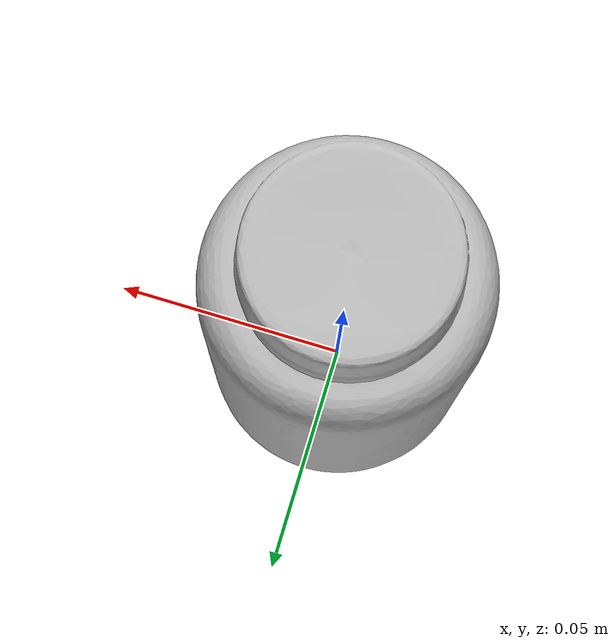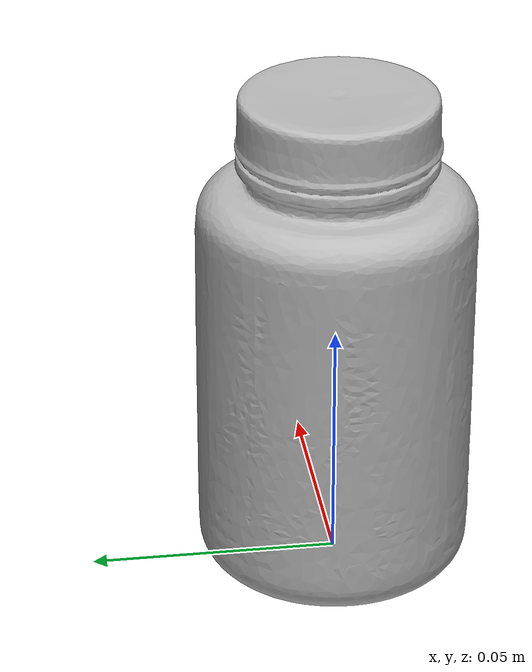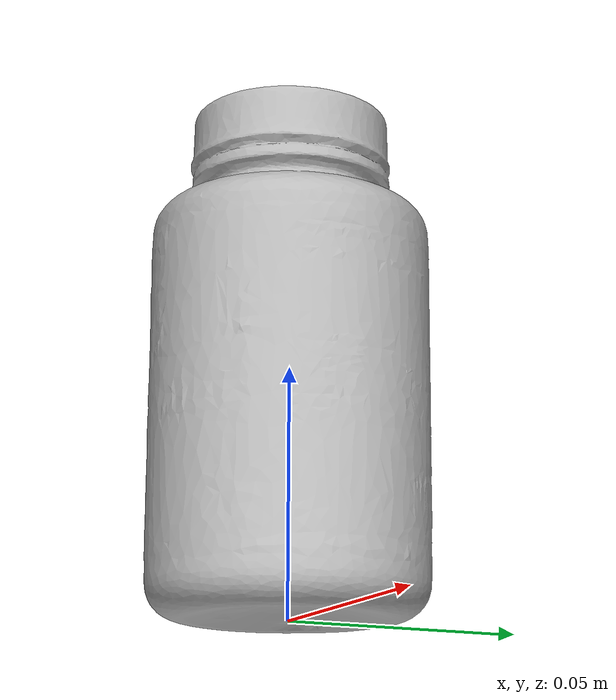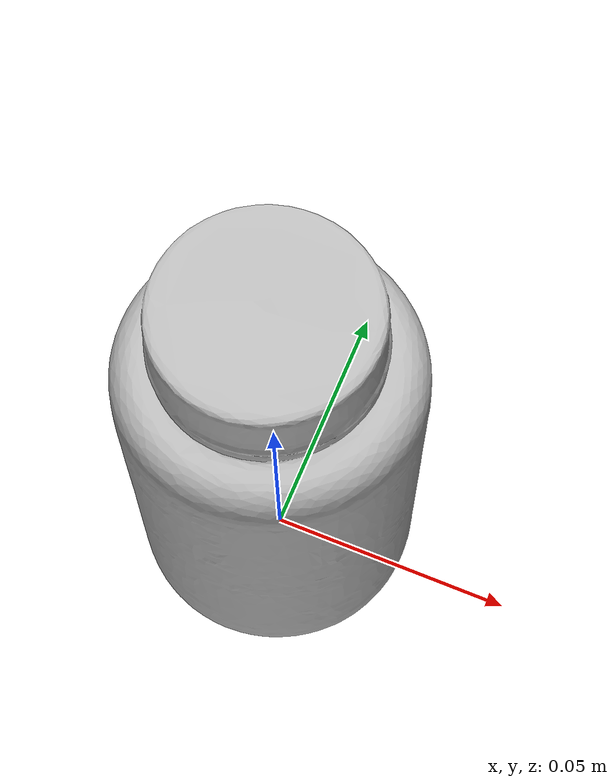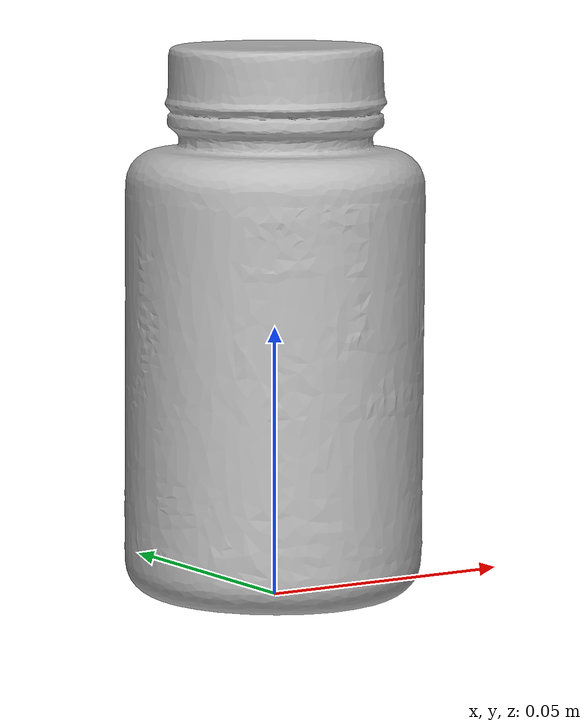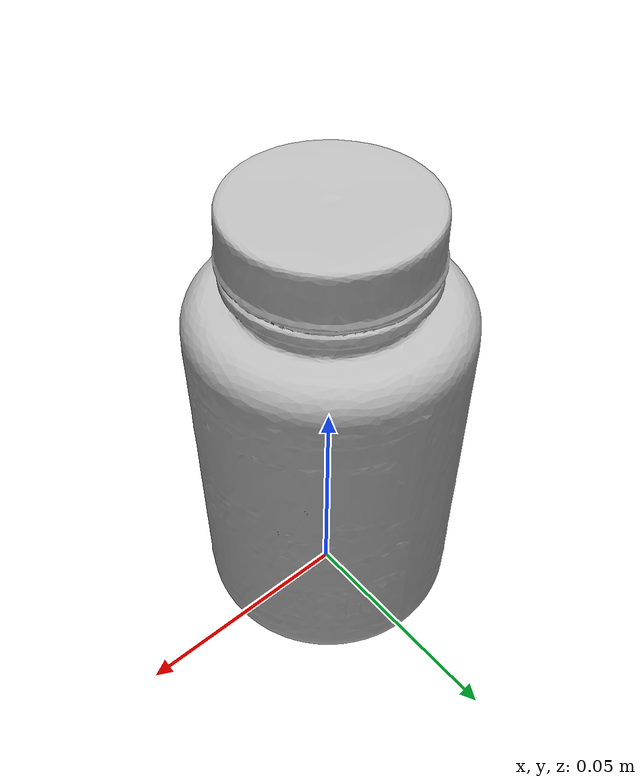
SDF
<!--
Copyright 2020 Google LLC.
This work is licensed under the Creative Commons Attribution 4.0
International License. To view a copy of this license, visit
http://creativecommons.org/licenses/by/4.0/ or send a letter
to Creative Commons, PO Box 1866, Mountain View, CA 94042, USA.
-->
<?xml version="1.0" ?>
<sdf version="1.6">
  <model name="Pet_Dophilus_powder">
    <link name="link_0">
      <visual name="visual">
        <geometry>
          <mesh>
            <uri>meshes/model.obj</uri>
          </mesh>
        </geometry>
      </visual>
      <collision name="collision_0">
        <geometry>
          <mesh>
            <uri>meshes/model.obj</uri>
          </mesh>
        </geometry>
      </collision>
    </link>
  </model>
</sdf>
